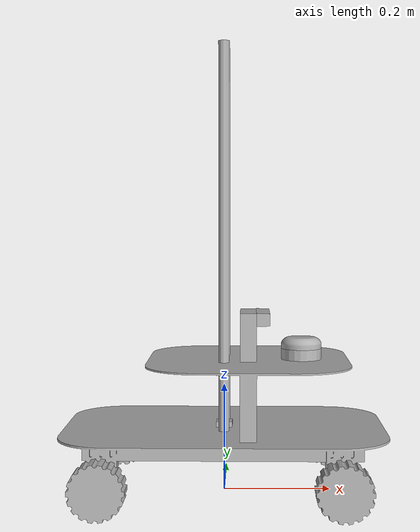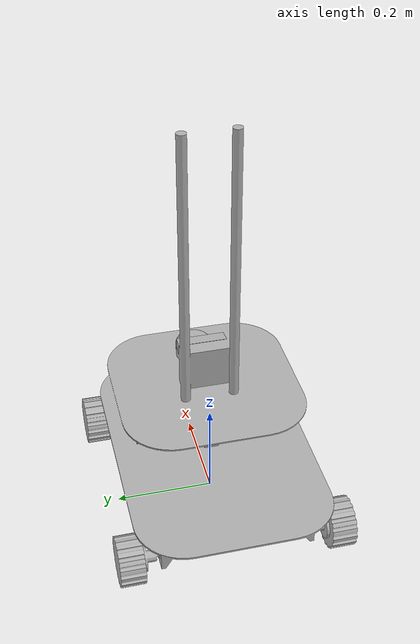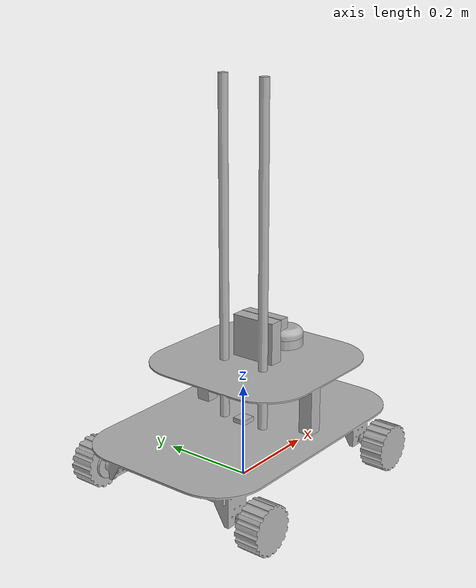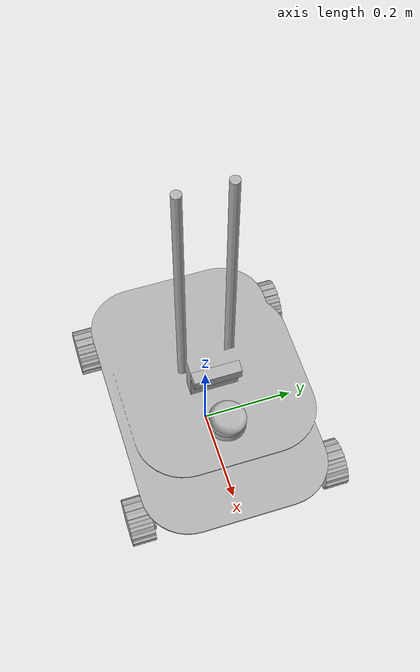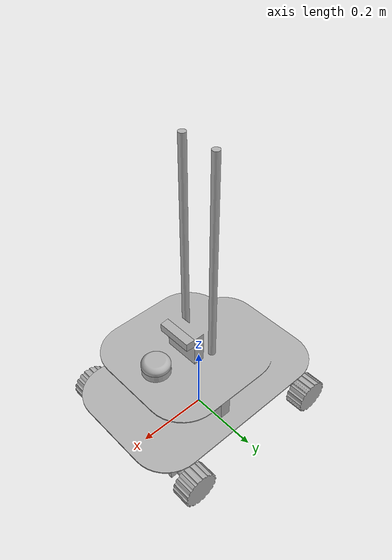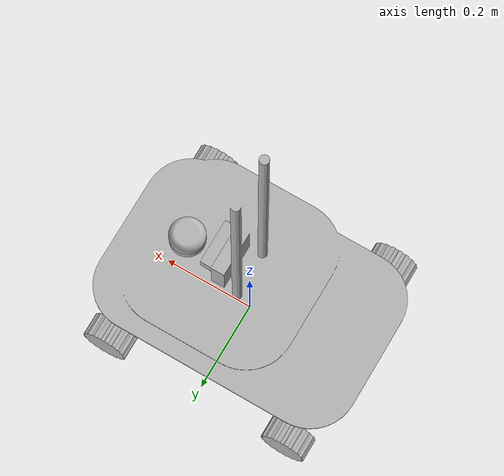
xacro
<?xml version="1.0" ?>
<robot name="shinrosv" xmlns:xacro="http://www.ros.org/wiki/xacro">

<xacro:include filename="$(find shinrosv_description)/urdf/materials.xacro" />
<xacro:include filename="$(find shinrosv_description)/urdf/shinrosv.trans" />
<xacro:include filename="$(find shinrosv_description)/urdf/shinrosv.gazebo" />
<link name="base_link">
  <inertial>
    <origin xyz="0.01278711153237291 -5.102024887175302e-06 0.17892011623790718" rpy="0 0 0"/>
    <mass value="32.530071826870284"/>
    <inertia ixx="1.014259" iyy="1.32692" izz="1.053418" ixy="-3e-06" iyz="-1.4e-05" ixz="-0.02997"/>
  </inertial>
  <visual>
    <origin xyz="0 0 0" rpy="0 0 0"/>
    <geometry>
      <mesh filename="package://shinrosv_description/meshes/base_link.stl" scale="0.001 0.001 0.001"/>
    </geometry>
    <material name="silver"/>
  </visual>
  <collision>
    <origin xyz="0 0 0" rpy="0 0 0"/>
    <geometry>
      <mesh filename="package://shinrosv_description/meshes/base_link.stl" scale="0.001 0.001 0.001"/>
    </geometry>
  </collision>
</link>

<link name="right_back_wheel_1">
  <inertial>
    <origin xyz="-1.3596804238069637e-10 -0.024999999999960137 -3.059192415222345e-07" rpy="0 0 0"/>
    <mass value="2.862252708540373"/>
    <inertia ixx="0.002268" iyy="0.003343" izz="0.002268" ixy="-0.0" iyz="0.0" ixz="0.0"/>
  </inertial>
  <visual>
    <origin xyz="0.215 0.187519 -0.049958" rpy="0 0 0"/>
    <geometry>
      <mesh filename="package://shinrosv_description/meshes/right_back_wheel_1.stl" scale="0.001 0.001 0.001"/>
    </geometry>
    <material name="silver"/>
  </visual>
  <collision>
    <origin xyz="0.215 0.187519 -0.049958" rpy="0 0 0"/>
    <geometry>
      <mesh filename="package://shinrosv_description/meshes/right_back_wheel_1.stl" scale="0.001 0.001 0.001"/>
    </geometry>
  </collision>
</link>

<link name="right_front_wheel_1">
  <inertial>
    <origin xyz="-1.3597276082855103e-10 -0.024999999999960054 -3.059192416332568e-07" rpy="0 0 0"/>
    <mass value="2.862252708540373"/>
    <inertia ixx="0.002268" iyy="0.003343" izz="0.002268" ixy="0.0" iyz="0.0" ixz="-0.0"/>
  </inertial>
  <visual>
    <origin xyz="-0.21 0.187519 -0.049958" rpy="0 0 0"/>
    <geometry>
      <mesh filename="package://shinrosv_description/meshes/right_front_wheel_1.stl" scale="0.001 0.001 0.001"/>
    </geometry>
    <material name="silver"/>
  </visual>
  <collision>
    <origin xyz="-0.21 0.187519 -0.049958" rpy="0 0 0"/>
    <geometry>
      <mesh filename="package://shinrosv_description/meshes/right_front_wheel_1.stl" scale="0.001 0.001 0.001"/>
    </geometry>
  </collision>
</link>

<link name="left_front_wheel_1">
  <inertial>
    <origin xyz="3.0531133177191805e-16 0.024999573661094204 -3.059192554000223e-07" rpy="0 0 0"/>
    <mass value="2.862252708540373"/>
    <inertia ixx="0.002268" iyy="0.003343" izz="0.002268" ixy="0.0" iyz="0.0" ixz="0.0"/>
  </inertial>
  <visual>
    <origin xyz="-0.21 -0.187481 -0.049958" rpy="0 0 0"/>
    <geometry>
      <mesh filename="package://shinrosv_description/meshes/left_front_wheel_1.stl" scale="0.001 0.001 0.001"/>
    </geometry>
    <material name="silver"/>
  </visual>
  <collision>
    <origin xyz="-0.21 -0.187481 -0.049958" rpy="0 0 0"/>
    <geometry>
      <mesh filename="package://shinrosv_description/meshes/left_front_wheel_1.stl" scale="0.001 0.001 0.001"/>
    </geometry>
  </collision>
</link>

<link name="left_back_wheel_1">
  <inertial>
    <origin xyz="2.7755575615628914e-16 0.024999573661094204 -3.05919255483289e-07" rpy="0 0 0"/>
    <mass value="2.862252708540373"/>
    <inertia ixx="0.002268" iyy="0.003343" izz="0.002268" ixy="0.0" iyz="0.0" ixz="0.0"/>
  </inertial>
  <visual>
    <origin xyz="0.215 -0.187481 -0.049958" rpy="0 0 0"/>
    <geometry>
      <mesh filename="package://shinrosv_description/meshes/left_back_wheel_1.stl" scale="0.001 0.001 0.001"/>
    </geometry>
    <material name="silver"/>
  </visual>
  <collision>
    <origin xyz="0.215 -0.187481 -0.049958" rpy="0 0 0"/>
    <geometry>
      <mesh filename="package://shinrosv_description/meshes/left_back_wheel_1.stl" scale="0.001 0.001 0.001"/>
    </geometry>
  </collision>
</link>

<link name="laser">
  <inertial>
    <origin xyz="1.0889415202886e-09 -4.098053852721454e-17 0.009432221342134062" rpy="0 0 0"/>
    <mass value="0.6533162141259045"/>
    <inertia ixx="0.000237" iyy="0.000237" izz="0.000433" ixy="0.0" iyz="-0.0" ixz="0.0"/>
  </inertial>
  <visual>
    <origin xyz="-0.145 -0.0 -0.2695" rpy="0 0 0"/>
    <geometry>
      <mesh filename="package://shinrosv_description/meshes/laser_1.stl" scale="0.001 0.001 0.001"/>
    </geometry>
    <material name="silver"/>
  </visual>
  <collision>
    <origin xyz="-0.145 -0.0 -0.2695" rpy="0 0 0"/>
    <geometry>
      <mesh filename="package://shinrosv_description/meshes/laser_1.stl" scale="0.001 0.001 0.001"/>
    </geometry>
  </collision>
</link>

<link name="camera_link_1">
  <inertial>
    <origin xyz="0.012265238048782032 9.614656201791487e-18 0.0007500896700108894" rpy="0 0 0"/>
    <mass value="0.4641048298473731"/>
    <inertia ixx="0.000401" iyy="4.6e-05" izz="0.000403" ixy="0.0" iyz="-0.0" ixz="0.0"/>
  </inertial>
  <visual>
    <origin xyz="-0.06 -0.0 -0.3265" rpy="0 0 0"/>
    <geometry>
      <mesh filename="package://shinrosv_description/meshes/camera_link_1.stl" scale="0.001 0.001 0.001"/>
    </geometry>
    <material name="silver"/>
  </visual>
  <collision>
    <origin xyz="-0.06 -0.0 -0.3265" rpy="0 0 0"/>
    <geometry>
      <mesh filename="package://shinrosv_description/meshes/camera_link_1.stl" scale="0.001 0.001 0.001"/>
    </geometry>
  </collision>
</link>

<link name="imu_1">
  <inertial>
    <origin xyz="0.0 0.0 0.004999999999999977" rpy="0 0 0"/>
    <mass value="0.07064999999999999"/>
    <inertia ixx="6e-06" iyy="6e-06" izz="1.1e-05" ixy="0.0" iyz="0.0" ixz="0.0"/>
  </inertial>
  <visual>
    <origin xyz="-0.0 -0.0 -0.121" rpy="0 0 0"/>
    <geometry>
      <mesh filename="package://shinrosv_description/meshes/imu_1.stl" scale="0.001 0.001 0.001"/>
    </geometry>
    <material name="silver"/>
  </visual>
  <collision>
    <origin xyz="-0.0 -0.0 -0.121" rpy="0 0 0"/>
    <geometry>
      <mesh filename="package://shinrosv_description/meshes/imu_1.stl" scale="0.001 0.001 0.001"/>
    </geometry>
  </collision>
</link>

<joint name="Revolute_10" type="fixed">
  <origin xyz="-0.215 -0.187519 0.049958" rpy="0 0 0"/>
  <parent link="base_link"/>
  <child link="right_back_wheel_1"/>
  <axis xyz="0.0 1.0 0.0"/>
</joint>

<joint name="Revolute_11" type="fixed">
  <origin xyz="0.21 -0.187519 0.049958" rpy="0 0 0"/>
  <parent link="base_link"/>
  <child link="right_front_wheel_1"/>
  <axis xyz="0.0 1.0 0.0"/>
</joint>

<joint name="Revolute_12" type="fixed">
  <origin xyz="0.21 0.187481 0.049958" rpy="0 0 0"/>
  <parent link="base_link"/>
  <child link="left_front_wheel_1"/>
  <axis xyz="0.0 1.0 0.0"/>
</joint>

<joint name="Revolute_13" type="fixed">
  <origin xyz="-0.215 0.187481 0.049958" rpy="0 0 0"/>
  <parent link="base_link"/>
  <child link="left_back_wheel_1"/>
  <axis xyz="0.0 1.0 0.0"/>
</joint>

<joint name="Rigid 15" type="fixed">
  <origin xyz="0.145 0.0 0.2695" rpy="0 0 0"/>
  <parent link="base_link"/>
  <child link="laser"/>
</joint>

<joint name="Rigid 16" type="fixed">
  <origin xyz="0.06 0.0 0.3265" rpy="0 0 0"/>
  <parent link="base_link"/>
  <child link="camera_link_1"/>
</joint>

<joint name="Rigid 17" type="fixed">
  <origin xyz="0.0 0.0 0.121" rpy="0 0 0"/>
  <parent link="base_link"/>
  <child link="imu_1"/>
</joint>

</robot>

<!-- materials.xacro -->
<robot name="shinrosv" xmlns:xacro="http://www.ros.org/wiki/xacro" >

<material name="silver">
  <color rgba="0.700 0.700 0.700 1.000"/>
</material>

</robot>

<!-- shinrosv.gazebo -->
<robot name="shinrosv" xmlns:xacro="http://www.ros.org/wiki/xacro" >

<xacro:property name="body_color" value="Gazebo/Silver" />
<xacro:property name="body_color" value="Gazebo/Red" />
<xacro:property name="body_color" value="Gazebo/Yellow" />
<xacro:property name="body_color" value="Gazebo/Black" />
<gazebo>
  <plugin name="control" filename="libgazebo_ros_control.so"/>
</gazebo>
<gazebo reference="base_link">
  <material>Gazebo/Black</material>
  <mu1>0.2</mu1>
  <mu2>0.2</mu2>
  <selfCollide>true</selfCollide>
  <gravity>true</gravity>
</gazebo>

<gazebo reference="right_back_wheel_1">
  <material>Gazebo/Yellow</material>
  <mu1>1000</mu1>
  <mu2>1000</mu2>
  <selfCollide>true</selfCollide>
</gazebo>

<gazebo reference="right_front_wheel_1">
  <material>Gazebo/Yellow</material>
  <mu1>1000</mu1>
  <mu2>1000</mu2>
  <selfCollide>true</selfCollide>
</gazebo>

<gazebo reference="left_front_wheel_1">
  <material>Gazebo/Yellow</material>
  <mu1>1000</mu1>
  <mu2>1000</mu2>
  <selfCollide>true</selfCollide>
</gazebo>

<gazebo reference="left_back_wheel_1">
  <material>Gazebo/Yellow</material>
  <mu1>1000</mu1>
  <mu2>1000</mu2>
  <selfCollide>true</selfCollide>
</gazebo>

<gazebo>
  <plugin name="skid_steer_drive_controller" filename="libgazebo_ros_skid_steer_drive.so">
    <updateRate>1000</updateRate>
    <robotNamespace>/</robotNamespace>
    <leftFrontJoint>Revolute_12</leftFrontJoint>
    <rightFrontJoint>Revolute_11</rightFrontJoint>
    <leftRearJoint>Revolute_13</leftRearJoint>
    <rightRearJoint>Revolute_10</rightRearJoint>
    <wheelSeparation>0.41</wheelSeparation>
    <wheelDiameter>0.10</wheelDiameter>
    <robotBaseFrame>base_link</robotBaseFrame>
    <torque>25</torque>
    <topicName>cmd_vel</topicName>
    <broadcastTF>true</broadcastTF>
  </plugin>
</gazebo>

<gazebo reference="laser_1">
  <material>${body_color}</material>
  <mu1>0.2</mu1>
  <mu2>0.2</mu2>
  <selfCollide>true</selfCollide>
</gazebo>

<gazebo reference="laser_1">
  <sensor type="ray" name="sensor">
    <pose>0 0 0 0 0 0</pose>
    <visualize>true</visualize>
    <update_rate>40</update_rate>
    <ray>
      <scan>
        <horizontal>
          <samples>720</samples>
          <resolution>1</resolution>
          <min_angle>-3.14</min_angle>
          <max_angle>3.14</max_angle>
        </horizontal>
      </scan>
      <range>
        <min>0.10</min>
        <max>30.0</max>
        <resolution>0.01</resolution>
      </range>
      <noise>
        <type>gaussian</type>
        <mean>0.0</mean>
        <stddev>0.01</stddev>
      </noise>
    </ray>
    <plugin name="gazebo_ros_head_hokuyo_controller" filename="libgazebo_ros_laser.so">
      <topicName>/scan</topicName>
      <frameName>laser_1</frameName>
    </plugin>
  </sensor>
</gazebo>

<gazebo reference="camera_link_1">
  <material>Gazebo/Red</material>
  <mu1>0.2</mu1>
  <mu2>0.2</mu2>
  <selfCollide>true</selfCollide>
</gazebo>

<gazebo reference="camera_link_1">
  <joint name="Rigid_16" type="fixed">
     <origin xyz="0 0 0" rpy="${-pi/2} 0 ${-pi/2}" />
     <parent link="base_link" />
     <child link="camera_link" />
  </joint>
</gazebo>

<gazebo reference="imu_1">
  <material>Gazebo/Orange</material>
  <mu1>0.2</mu1>
  <mu2>0.2</mu2>
  <selfCollide>true</selfCollide>
</gazebo>

<gazebo reference="imu_1">
  <gravity>true</gravity>
  <sensor name="imu_sensor" type="imu">
    <always_on>true</always_on>
    <update_rate>10</update_rate>
    <visualize>true</visualize>
    <topic>__default_topic__</topic>
    <plugin filename="libgazebo_ros_imu_sensor.so" name="imu_plugin">
      <topicName>imu</topicName>
      <bodyName>imu_1</bodyName>
      <updateRateHZ>10.0</updateRateHZ>
      <gaussianNoise>0.0</gaussianNoise>
      <xyzOffset>0 0 0</xyzOffset>
      <rpyOffset>0 0 0</rpyOffset>
      <frameName>imu_1</frameName>
      <initialOrientationAsReference>false</initialOrientationAsReference>
    </plugin>
    <pose>0 0 0 0 0 0</pose>
  </sensor>
</gazebo>

</robot>
